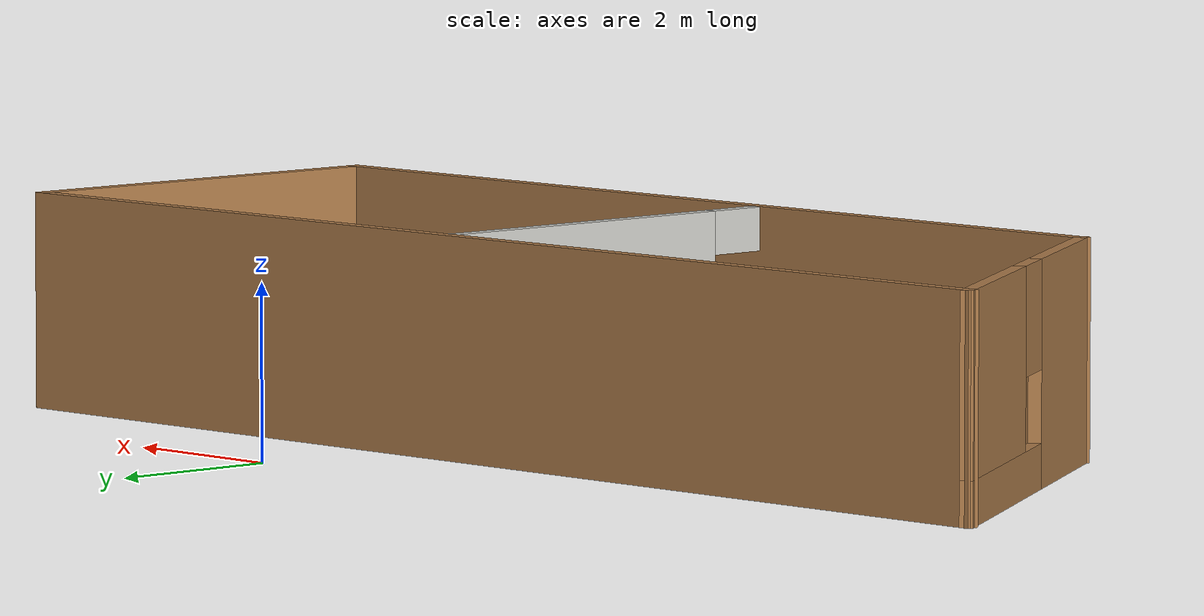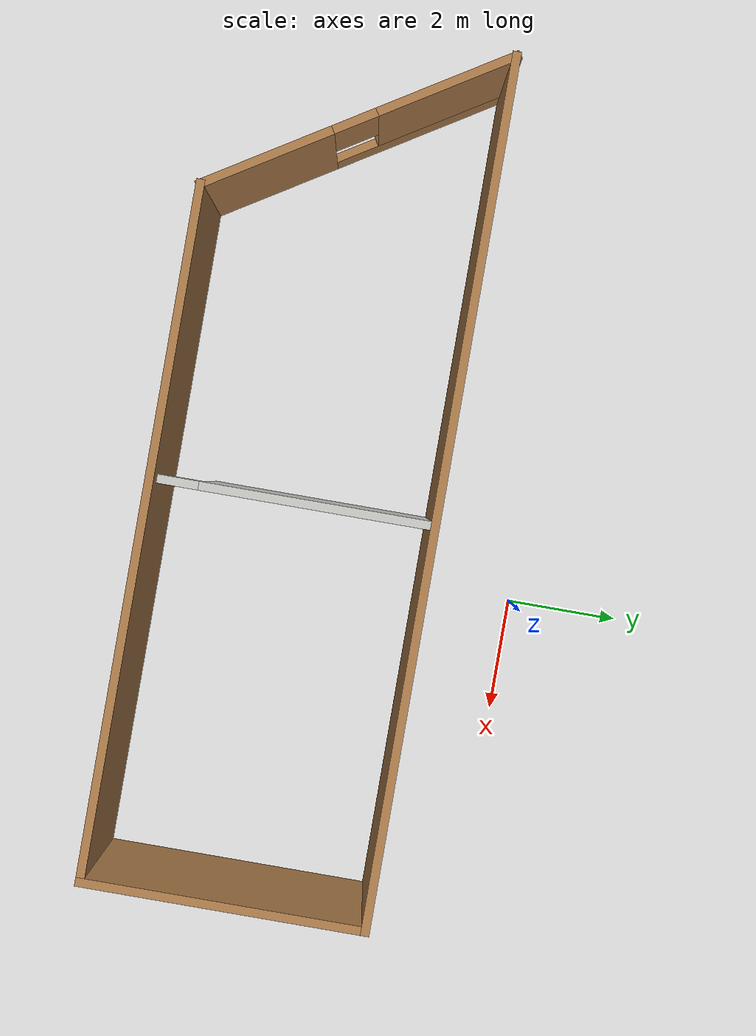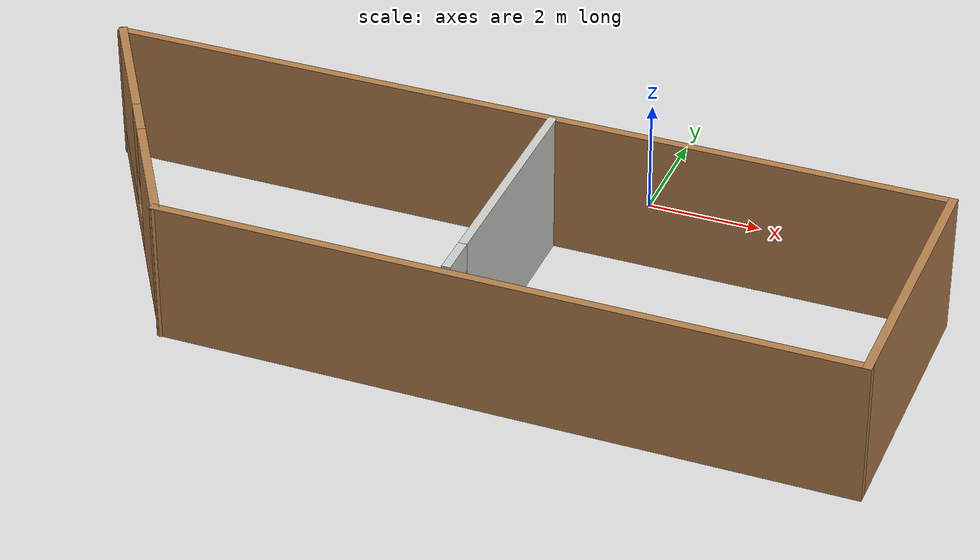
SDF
<?xml version='1.0'?>
<sdf version='1.7'>
  <model name='mybuilding'>
    <pose>-1.75912 -3.32662 0 0 -0 0</pose>
    <link name='Wall_0'>
      <collision name='Wall_0_Collision'>
        <geometry>
          <box>
            <size>15 0.15 2.5</size>
          </box>
        </geometry>
        <pose>0 0 1.25 0 -0 0</pose>
      </collision>
      <visual name='Wall_0_Visual'>
        <pose>0 0 1.25 0 -0 0</pose>
        <geometry>
          <box>
            <size>15 0.15 2.5</size>
          </box>
        </geometry>
        <material>
          <script>
            <uri>file://media/materials/scripts/gazebo.material</uri>
            <name>Gazebo/Wood</name>
          </script>
          <ambient>0.435294 0.796078 0.67451 1</ambient>
        </material>
        <meta>
          <layer>0</layer>
        </meta>
      </visual>
      <pose>0.014119 1.62662 0 0 -0 0</pose>
    </link>
    <link name='Wall_1'>
      <collision name='Wall_1_Collision'>
        <geometry>
          <box>
            <size>5 0.15 2.5</size>
          </box>
        </geometry>
        <pose>0 0 1.25 0 -0 0</pose>
      </collision>
      <visual name='Wall_1_Visual'>
        <pose>0 0 1.25 0 -0 0</pose>
        <geometry>
          <box>
            <size>5 0.15 2.5</size>
          </box>
        </geometry>
        <material>
          <script>
            <uri>file://media/materials/scripts/gazebo.material</uri>
            <name>Gazebo/Wood</name>
          </script>
          <ambient>0.435294 0.796078 0.67451 1</ambient>
        </material>
        <meta>
          <layer>0</layer>
        </meta>
      </visual>
      <pose>7.43912 -0.798381 0 0 -0 -1.5708</pose>
    </link>
    <link name='Wall_2'>
      <collision name='Wall_2_Collision'>
        <geometry>
          <box>
            <size>12 0.15 2.5</size>
          </box>
        </geometry>
        <pose>0 0 1.25 0 -0 0</pose>
      </collision>
      <visual name='Wall_2_Visual'>
        <pose>0 0 1.25 0 -0 0</pose>
        <geometry>
          <box>
            <size>12 0.15 2.5</size>
          </box>
        </geometry>
        <material>
          <script>
            <uri>file://media/materials/scripts/gazebo.material</uri>
            <name>Gazebo/Wood</name>
          </script>
          <ambient>0.435294 0.796078 0.67451 1</ambient>
        </material>
        <meta>
          <layer>0</layer>
        </meta>
      </visual>
      <pose>1.51412 -3.22338 0 0 -0 3.14159</pose>
    </link>
    <link name='Wall_3'>
      <pose>-5.91088 -0.798381 0 0 -0 2.12475</pose>
      <visual name='Wall_3_Visual_0'>
        <pose>-1.69265 0 1.25 0 -0 0</pose>
        <geometry>
          <box>
            <size>2.46755 0.15 2.5</size>
          </box>
        </geometry>
        <material>
          <script>
            <uri>file://media/materials/scripts/gazebo.material</uri>
            <name>Gazebo/Wood</name>
          </script>
          <ambient>0.435294 0.796078 0.67451 1</ambient>
        </material>
        <meta>
          <layer>0</layer>
        </meta>
      </visual>
      <collision name='Wall_3_Collision_0'>
        <geometry>
          <box>
            <size>2.46755 0.15 2.5</size>
          </box>
        </geometry>
        <pose>-1.69265 0 1.25 0 -0 0</pose>
      </collision>
      <visual name='Wall_3_Visual_1'>
        <pose>1.23378 0 0.25 0 -0 0</pose>
        <geometry>
          <box>
            <size>3.3853 0.15 0.5</size>
          </box>
        </geometry>
        <material>
          <script>
            <uri>file://media/materials/scripts/gazebo.material</uri>
            <name>Gazebo/Wood</name>
          </script>
          <ambient>0.435294 0.796078 0.67451 1</ambient>
        </material>
        <meta>
          <layer>0</layer>
        </meta>
      </visual>
      <collision name='Wall_3_Collision_1'>
        <geometry>
          <box>
            <size>3.3853 0.15 0.5</size>
          </box>
        </geometry>
        <pose>1.23378 0 0.25 0 -0 0</pose>
      </collision>
      <visual name='Wall_3_Visual_2'>
        <pose>1.63378 0 1.5 0 -0 0</pose>
        <geometry>
          <box>
            <size>2.5853 0.15 2</size>
          </box>
        </geometry>
        <material>
          <script>
            <uri>file://media/materials/scripts/gazebo.material</uri>
            <name>Gazebo/Wood</name>
          </script>
          <ambient>0.435294 0.796078 0.67451 1</ambient>
        </material>
        <meta>
          <layer>0</layer>
        </meta>
      </visual>
      <collision name='Wall_3_Collision_2'>
        <geometry>
          <box>
            <size>2.5853 0.15 2</size>
          </box>
        </geometry>
        <pose>1.63378 0 1.5 0 -0 0</pose>
      </collision>
      <visual name='Wall_3_Visual_3'>
        <pose>-0.058874 0 1.9 0 -0 0</pose>
        <geometry>
          <box>
            <size>0.8 0.15 1.2</size>
          </box>
        </geometry>
        <material>
          <script>
            <uri>file://media/materials/scripts/gazebo.material</uri>
            <name>Gazebo/Wood</name>
          </script>
          <ambient>0.435294 0.796078 0.67451 1</ambient>
        </material>
        <meta>
          <layer>0</layer>
        </meta>
      </visual>
      <collision name='Wall_3_Collision_3'>
        <geometry>
          <box>
            <size>0.8 0.15 1.2</size>
          </box>
        </geometry>
        <pose>-0.058874 0 1.9 0 -0 0</pose>
      </collision>
    </link>
    <link name='Wall_5'>
      <pose>0.569119 -0.723381 0 0 -0 -1.5708</pose>
      <visual name='Wall_5_Visual_0'>
        <pose>-0.3525 0 1.25 0 -0 0</pose>
        <geometry>
          <box>
            <size>4.045 0.15 2.5</size>
          </box>
        </geometry>
        <material>
          <script>
            <uri>file://media/materials/scripts/gazebo.material</uri>
            <name>Gazebo/CeilingTiled</name>
          </script>
          <ambient>1 0.764706 0.305882 1</ambient>
        </material>
        <meta>
          <layer>0</layer>
        </meta>
      </visual>
      <collision name='Wall_5_Collision_0'>
        <geometry>
          <box>
            <size>4.045 0.15 2.5</size>
          </box>
        </geometry>
        <pose>-0.3525 0 1.25 0 -0 0</pose>
      </collision>
      <visual name='Wall_5_Visual_1'>
        <pose>2.0225 0 2.25 0 -0 0</pose>
        <geometry>
          <box>
            <size>0.705 0.15 0.5</size>
          </box>
        </geometry>
        <material>
          <script>
            <uri>file://media/materials/scripts/gazebo.material</uri>
            <name>Gazebo/CeilingTiled</name>
          </script>
          <ambient>1 0.764706 0.305882 1</ambient>
        </material>
        <meta>
          <layer>0</layer>
        </meta>
      </visual>
      <collision name='Wall_5_Collision_1'>
        <geometry>
          <box>
            <size>0.705 0.15 0.5</size>
          </box>
        </geometry>
        <pose>2.0225 0 2.25 0 -0 0</pose>
      </collision>
    </link>
    <static>1</static>
  </model>
</sdf>
